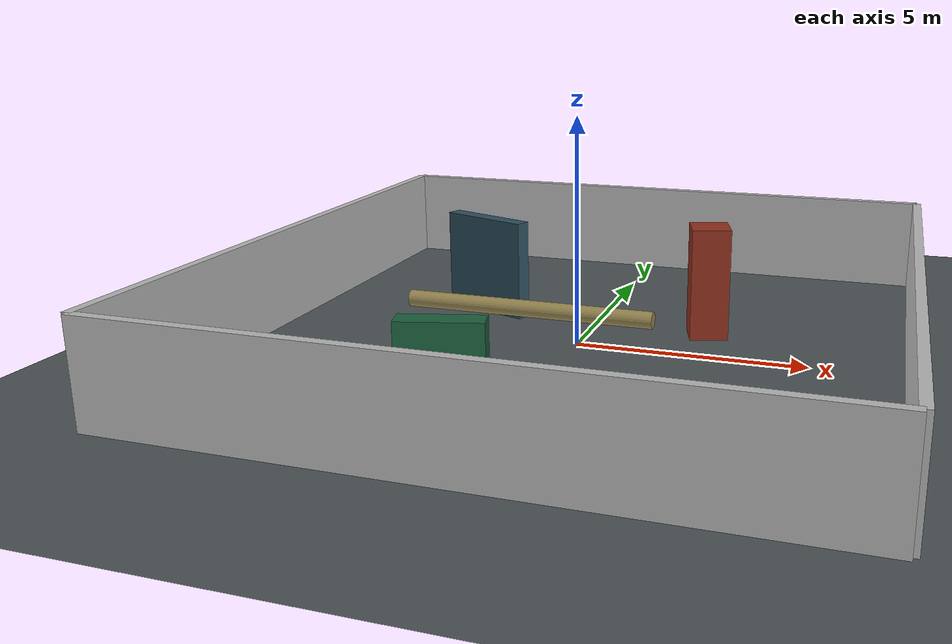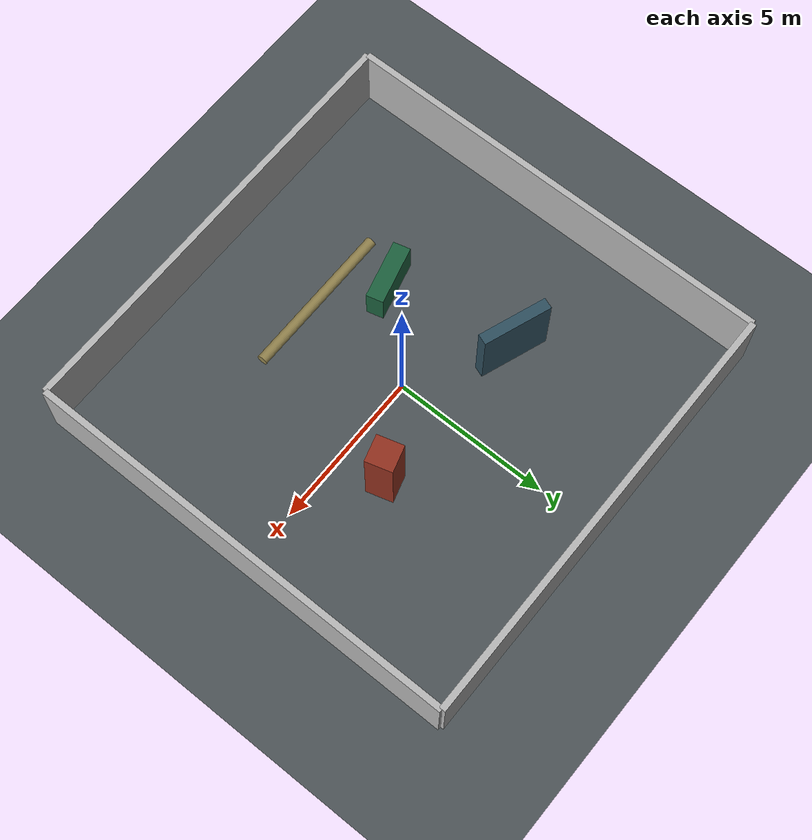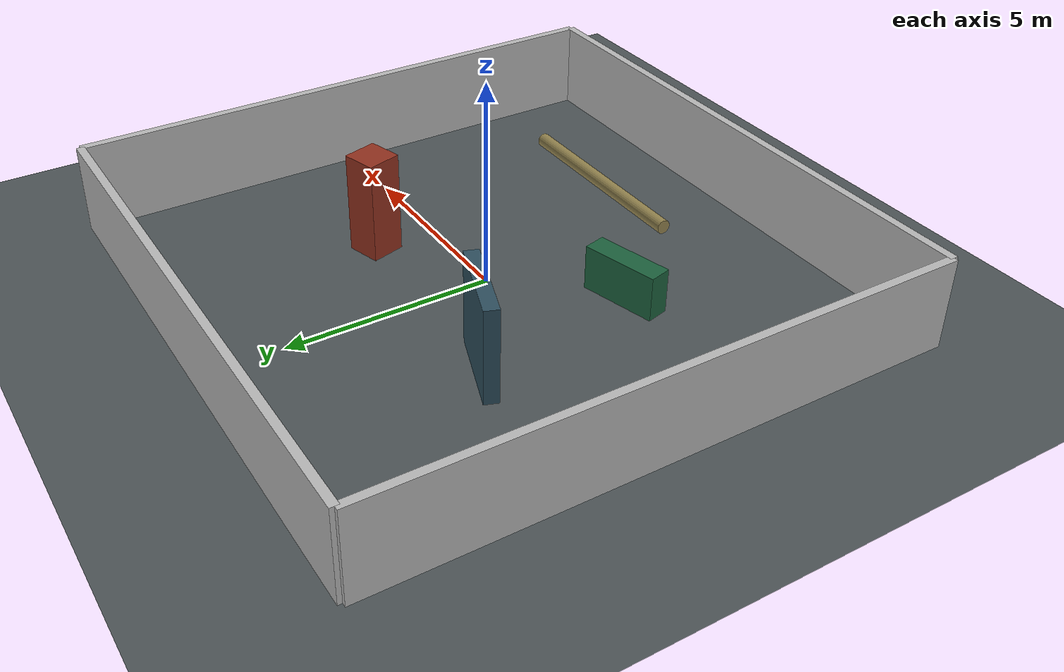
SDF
<?xml version="1.0" ?>
<sdf version="1.8">
  <world name="px4_reconstruction_world">
    <plugin filename="libignition-gazebo-physics-system.so" name="ignition::gazebo::systems::Physics"/>
    <plugin filename="libignition-gazebo-user-commands-system.so" name="ignition::gazebo::systems::UserCommands"/>
    <plugin filename="libignition-gazebo-scene-broadcaster-system.so" name="ignition::gazebo::systems::SceneBroadcaster"/>
    <plugin filename="libignition-gazebo-sensors-system.so" name="ignition::gazebo::systems::Sensors">
      <render_engine>ogre2</render_engine>
    </plugin>

    <gravity>0 0 -9.8</gravity>

    <light name="sun" type="directional">
      <pose>-3 4 10 0 0 0</pose>
      <diffuse>0.85 0.82 0.76 1</diffuse>
      <specular>0.25 0.25 0.25 1</specular>
      <direction>-0.45 0.35 -1</direction>
    </light>

    <model name="floor_grid">
      <static>true</static>
      <link name="link">
        <collision name="collision"><geometry><plane><normal>0 0 1</normal><size>28 28</size></plane></geometry></collision>
        <visual name="visual">
          <geometry><plane><normal>0 0 1</normal><size>28 28</size></plane></geometry>
          <material><ambient>0.30 0.33 0.34 1</ambient><diffuse>0.30 0.33 0.34 1</diffuse></material>
        </visual>
      </link>
    </model>

    <model name="north_boundary">
      <static>true</static>
      <pose>0 7 1.1 0 0 0</pose>
      <link name="link">
        <collision name="collision"><geometry><box><size>14 0.20 2.2</size></box></geometry></collision>
        <visual name="visual"><geometry><box><size>14 0.20 2.2</size></box></geometry></visual>
      </link>
    </model>
    <model name="south_boundary">
      <static>true</static>
      <pose>0 -7 1.1 0 0 0</pose>
      <link name="link">
        <collision name="collision"><geometry><box><size>14 0.20 2.2</size></box></geometry></collision>
        <visual name="visual"><geometry><box><size>14 0.20 2.2</size></box></geometry></visual>
      </link>
    </model>
    <model name="east_boundary">
      <static>true</static>
      <pose>7 0 1.1 0 0 0</pose>
      <link name="link">
        <collision name="collision"><geometry><box><size>0.20 14 2.2</size></box></geometry></collision>
        <visual name="visual"><geometry><box><size>0.20 14 2.2</size></box></geometry></visual>
      </link>
    </model>
    <model name="west_boundary">
      <static>true</static>
      <pose>-7 0 1.1 0 0 0</pose>
      <link name="link">
        <collision name="collision"><geometry><box><size>0.20 14 2.2</size></box></geometry></collision>
        <visual name="visual"><geometry><box><size>0.20 14 2.2</size></box></geometry></visual>
      </link>
    </model>

    <model name="inspection_tower">
      <static>true</static>
      <pose>2.6 1.5 1.25 0 0 0.28</pose>
      <link name="link">
        <collision name="collision"><geometry><box><size>0.85 0.85 2.5</size></box></geometry></collision>
        <visual name="visual"><geometry><box><size>0.85 0.85 2.5</size></box></geometry><material><diffuse>0.57 0.19 0.12 1</diffuse></material></visual>
      </link>
    </model>
    <model name="damaged_wall_panel">
      <static>true</static>
      <pose>-2.8 1.8 1.15 0 0 -0.35</pose>
      <link name="link">
        <collision name="collision"><geometry><box><size>2.2 0.35 2.3</size></box></geometry></collision>
        <visual name="visual"><geometry><box><size>2.2 0.35 2.3</size></box></geometry><material><diffuse>0.18 0.31 0.37 1</diffuse></material></visual>
      </link>
    </model>
    <model name="low_equipment_rack">
      <static>true</static>
      <pose>-2.2 -2.3 0.55 0 0 0.25</pose>
      <link name="link">
        <collision name="collision"><geometry><box><size>1.9 0.55 1.1</size></box></geometry></collision>
        <visual name="visual"><geometry><box><size>1.9 0.55 1.1</size></box></geometry><material><diffuse>0.11 0.38 0.24 1</diffuse></material></visual>
      </link>
    </model>
    <model name="overhead_pipe">
      <static>true</static>
      <pose>0.0 -3.1 1.75 1.5708 0 1.5708</pose>
      <link name="link">
        <collision name="collision"><geometry><cylinder><radius>0.16</radius><length>4.8</length></cylinder></geometry></collision>
        <visual name="visual"><geometry><cylinder><radius>0.16</radius><length>4.8</length></cylinder></geometry><material><diffuse>0.58 0.52 0.31 1</diffuse></material></visual>
      </link>
    </model>

    <model name="rgbd_reference_pod">
      <static>true</static>
      <pose>0 0 1.0 0 0 0</pose>
      <link name="link">
        <sensor name="rgbd_camera" type="rgbd_camera">
          <topic>/camera</topic>
          <update_rate>15</update_rate>
          <always_on>true</always_on>
          <visualize>true</visualize>
          <camera>
            <horizontal_fov>1.047</horizontal_fov>
            <image><width>320</width><height>240</height><format>R8G8B8</format></image>
            <clip><near>0.25</near><far>8.0</far></clip>
          </camera>
        </sensor>
      </link>
    </model>
  </world>
</sdf>
